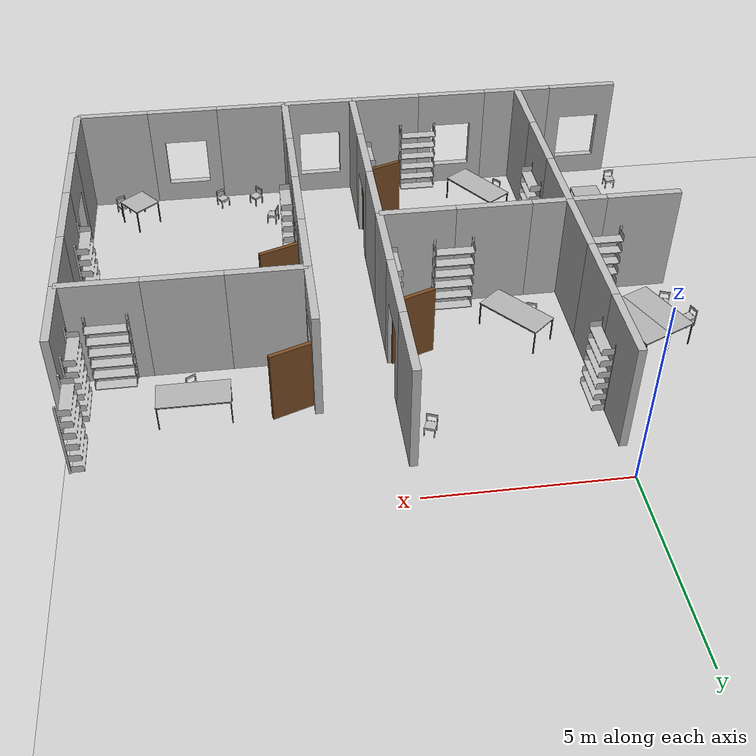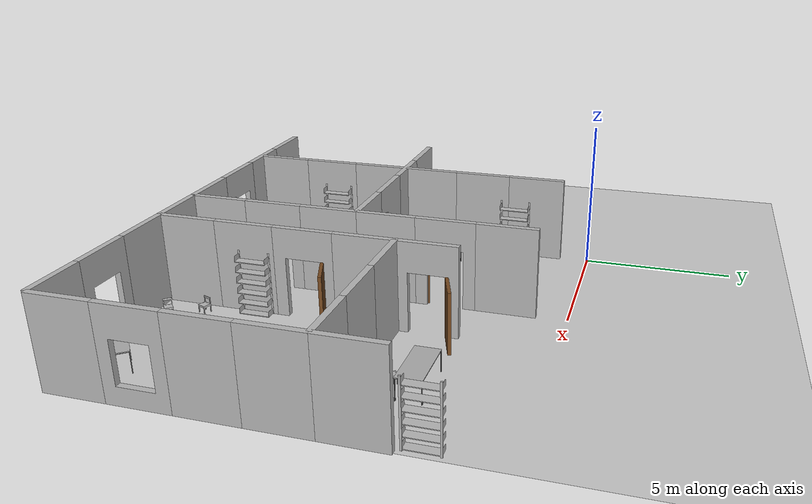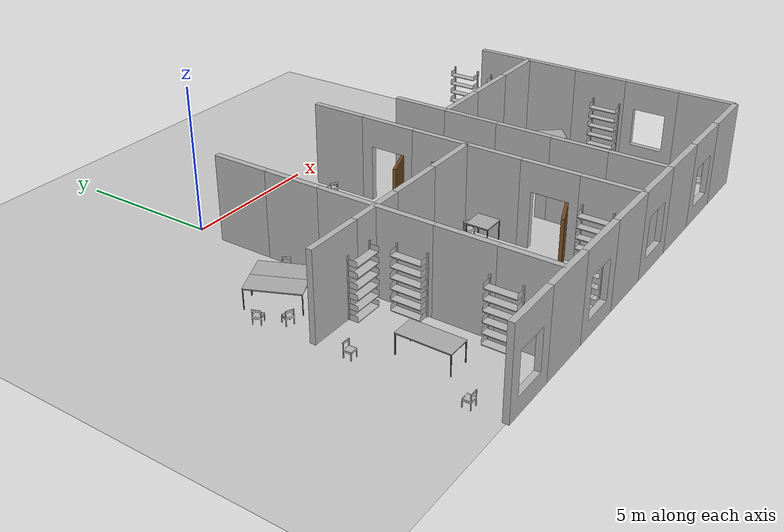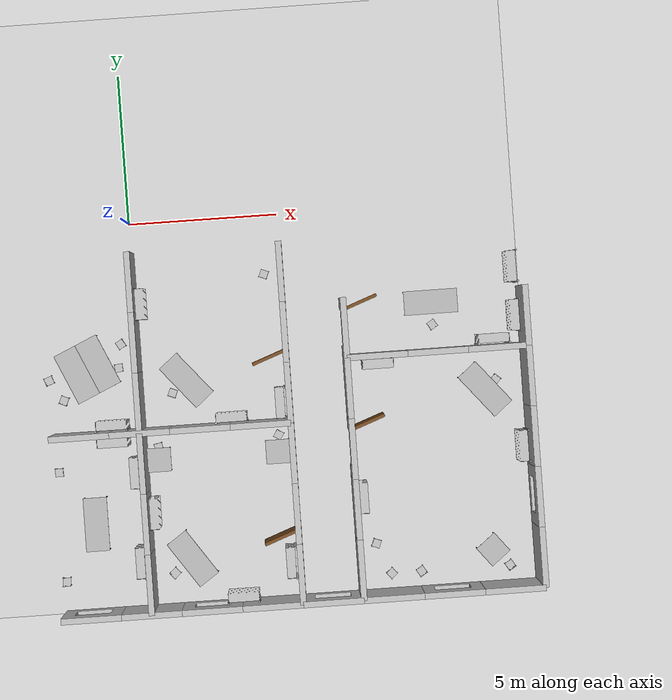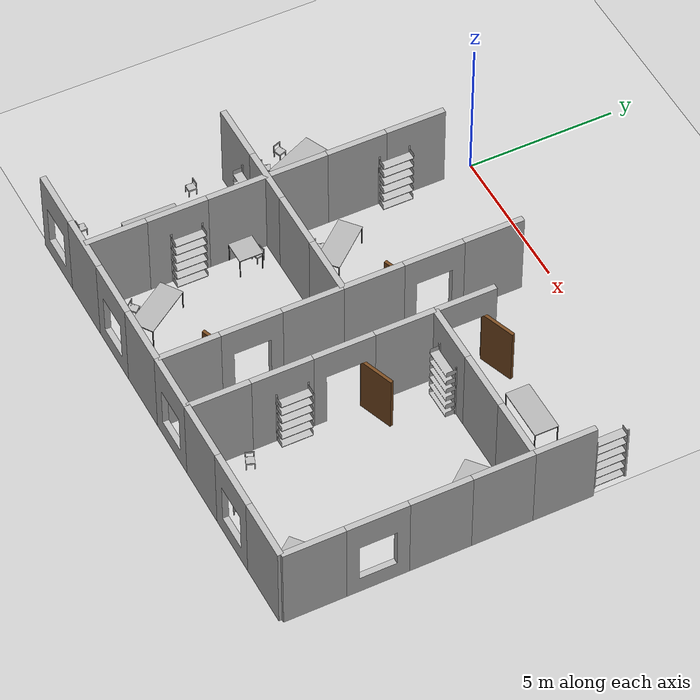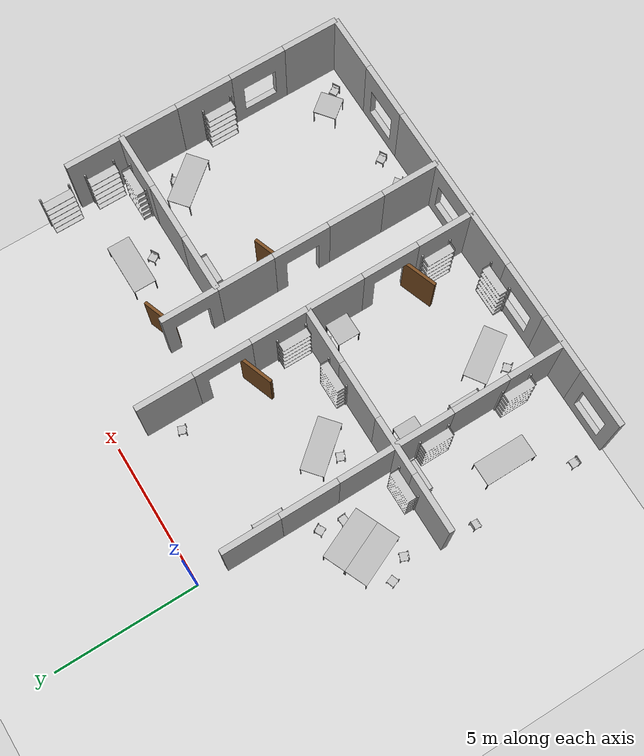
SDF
<sdf version="1.6">
 <world name="office_sim">
  <model name="office_floor">
   <pose>1 -3 0 0 -0 0</pose>
   <static>1</static>
   <link name="link">
    <collision name="collision">
     <geometry><plane><normal>0 0 1</normal><size>100 100</size></plane></geometry>
     <surface><friction><ode><mu>100</mu><mu2>50</mu2></ode></friction></surface>
    </collision>
    <visual name="visual">
     <cast_shadows>0</cast_shadows>
     <geometry><plane><normal>0 0 1</normal><size>24 20</size></plane></geometry>
     <material>
      <script><uri>file://Media/materials/scripts/iai-office.material</uri><name>IAI/OfficeCarpet</name></script>
     </material>
    </visual>
   </link>
  </model>
  <model name="Shelves.030">
   <static>1</static>
   <link name="Shelves">
    <collision name="collision">
     <geometry><mesh><uri>model://Shelves/Shelves.dae</uri></mesh></geometry>
    </collision>
    <visual name="vis">
     <cast_shadows>0</cast_shadows>
     <geometry><mesh><uri>model://Shelves/Shelves.dae</uri></mesh></geometry>
    </visual>
   </link>
   <pose>-0.968436 -7.13507 0 0 -0 0</pose>
  </model>
  <model name="Shelves.029">
   <static>1</static>
   <link name="Shelves">
    <collision name="collision">
     <geometry><mesh><uri>model://Shelves/Shelves.dae</uri></mesh></geometry>
    </collision>
    <visual name="vis">
     <cast_shadows>0</cast_shadows>
     <geometry><mesh><uri>model://Shelves/Shelves.dae</uri></mesh></geometry>
    </visual>
   </link>
   <pose>8.03156 -5.13507 0 0 -0 0</pose>
  </model>
  <model name="Shelves.024">
   <static>1</static>
   <link name="Shelves">
    <collision name="collision">
     <geometry><mesh><uri>model://Shelves/Shelves.dae</uri></mesh></geometry>
    </collision>
    <visual name="vis">
     <cast_shadows>0</cast_shadows>
     <geometry><mesh><uri>model://Shelves/Shelves.dae</uri></mesh></geometry>
    </visual>
   </link>
   <pose>-0.968436 -6.85579 0 0 -0 -3.14159</pose>
  </model>
  <model name="Shelves.023">
   <static>1</static>
   <link name="Shelves">
    <collision name="collision">
     <geometry><mesh><uri>model://Shelves/Shelves.dae</uri></mesh></geometry>
    </collision>
    <visual name="vis">
     <cast_shadows>0</cast_shadows>
     <geometry><mesh><uri>model://Shelves/Shelves.dae</uri></mesh></geometry>
    </visual>
   </link>
   <pose>11.9316 -4.8423 0 0 -0 -3.14159</pose>
  </model>
  <model name="Shelves.021">
   <static>1</static>
   <link name="Shelves">
    <collision name="collision">
     <geometry><mesh><uri>model://Shelves/Shelves.dae</uri></mesh></geometry>
    </collision>
    <visual name="vis">
     <cast_shadows>0</cast_shadows>
     <geometry><mesh><uri>model://Shelves/Shelves.dae</uri></mesh></geometry>
    </visual>
   </link>
   <pose>3.03156 -6.85579 0 0 -0 -3.14159</pose>
  </model>
  <model name="Shelves.020">
   <static>1</static>
   <link name="Shelves">
    <collision name="collision">
     <geometry><mesh><uri>model://Shelves/Shelves.dae</uri></mesh></geometry>
    </collision>
    <visual name="vis">
     <cast_shadows>0</cast_shadows>
     <geometry><mesh><uri>model://Shelves/Shelves.dae</uri></mesh></geometry>
    </visual>
   </link>
   <pose>3.03156 -12.8558 0 0 -0 -3.14159</pose>
  </model>
  <model name="Shelves.019">
   <static>1</static>
   <link name="Shelves">
    <collision name="collision">
     <geometry><mesh><uri>model://Shelves/Shelves.dae</uri></mesh></geometry>
    </collision>
    <visual name="vis">
     <cast_shadows>0</cast_shadows>
     <geometry><mesh><uri>model://Shelves/Shelves.dae</uri></mesh></geometry>
    </visual>
   </link>
   <pose>4.83156 -11.6774 0 0 -0 -1.5708</pose>
  </model>
  <model name="Shelves.018">
   <static>1</static>
   <link name="Shelves">
    <collision name="collision">
     <geometry><mesh><uri>model://Shelves/Shelves.dae</uri></mesh></geometry>
    </collision>
    <visual name="vis">
     <cast_shadows>0</cast_shadows>
     <geometry><mesh><uri>model://Shelves/Shelves.dae</uri></mesh></geometry>
    </visual>
   </link>
   <pose>-0.168436 -8.34184 0 0 -0 -1.5708</pose>
  </model>
  <model name="Shelves.017">
   <static>1</static>
   <link name="Shelves">
    <collision name="collision">
     <geometry><mesh><uri>model://Shelves/Shelves.dae</uri></mesh></geometry>
    </collision>
    <visual name="vis">
     <cast_shadows>0</cast_shadows>
     <geometry><mesh><uri>model://Shelves/Shelves.dae</uri></mesh></geometry>
    </visual>
   </link>
   <pose>-0.168436 -11.3418 0 0 -0 -1.5708</pose>
  </model>
  <model name="Shelves.014">
   <static>1</static>
   <link name="Shelves">
    <collision name="collision">
     <geometry><mesh><uri>model://Shelves/Shelves.dae</uri></mesh></geometry>
    </collision>
    <visual name="vis">
     <cast_shadows>0</cast_shadows>
     <geometry><mesh><uri>model://Shelves/Shelves.dae</uri></mesh></geometry>
    </visual>
   </link>
   <pose>4.83156 -6.34184 0 0 -0 -1.5708</pose>
  </model>
  <model name="Shelves.013">
   <static>1</static>
   <link name="Shelves">
    <collision name="collision">
     <geometry><mesh><uri>model://Shelves/Shelves.dae</uri></mesh></geometry>
    </collision>
    <visual name="vis">
     <cast_shadows>0</cast_shadows>
     <geometry><mesh><uri>model://Shelves/Shelves.dae</uri></mesh></geometry>
    </visual>
   </link>
   <pose>12.8316 -8.34184 0 0 -0 -1.5708</pose>
  </model>
  <model name="Shelves.012">
   <static>1</static>
   <link name="Shelves">
    <collision name="collision">
     <geometry><mesh><uri>model://Shelves/Shelves.dae</uri></mesh></geometry>
    </collision>
    <visual name="vis">
     <cast_shadows>0</cast_shadows>
     <geometry><mesh><uri>model://Shelves/Shelves.dae</uri></mesh></geometry>
    </visual>
   </link>
   <pose>12.8316 -2.34184 0 0 -0 -1.5708</pose>
  </model>
  <model name="Shelves.011">
   <static>1</static>
   <link name="Shelves">
    <collision name="collision">
     <geometry><mesh><uri>model://Shelves/Shelves.dae</uri></mesh></geometry>
    </collision>
    <visual name="vis">
     <cast_shadows>0</cast_shadows>
     <geometry><mesh><uri>model://Shelves/Shelves.dae</uri></mesh></geometry>
    </visual>
   </link>
   <pose>12.8316 -3.97036 0 0 -0 -1.5708</pose>
  </model>
  <model name="Shelves.009">
   <static>1</static>
   <link name="Shelves">
    <collision name="collision">
     <geometry><mesh><uri>model://Shelves/Shelves.dae</uri></mesh></geometry>
    </collision>
    <visual name="vis">
     <cast_shadows>0</cast_shadows>
     <geometry><mesh><uri>model://Shelves/Shelves.dae</uri></mesh></geometry>
    </visual>
   </link>
   <pose>7.10335 -9.7003 0 0 -0 1.5708</pose>
  </model>
  <model name="Shelves.007">
   <static>1</static>
   <link name="Shelves">
    <collision name="collision">
     <geometry><mesh><uri>model://Shelves/Shelves.dae</uri></mesh></geometry>
    </collision>
    <visual name="vis">
     <cast_shadows>0</cast_shadows>
     <geometry><mesh><uri>model://Shelves/Shelves.dae</uri></mesh></geometry>
    </visual>
   </link>
   <pose>0.103355 -9.74184 0 0 -0 1.5708</pose>
  </model>
  <model name="Shelves.006">
   <static>1</static>
   <link name="Shelves">
    <collision name="collision">
     <geometry><mesh><uri>model://Shelves/Shelves.dae</uri></mesh></geometry>
    </collision>
    <visual name="vis">
     <cast_shadows>0</cast_shadows>
     <geometry><mesh><uri>model://Shelves/Shelves.dae</uri></mesh></geometry>
    </visual>
   </link>
   <pose>0.103355 -2.74184 0 0 -0 1.5708</pose>
  </model>
  <model name="DoorOpen.005">
   <static>1</static>
   <link name="DoorOpen">
    <collision name="collision">
     <geometry><mesh><uri>model://DoorOpen/DoorOpen.dae</uri></mesh></geometry>
    </collision>
    <visual name="vis">
     <cast_shadows>0</cast_shadows>
     <geometry><mesh><uri>model://DoorOpen/DoorOpen.dae</uri></mesh></geometry>
    </visual>
   </link>
   <pose>5 -10 0 0 -0 1.5708</pose>
  </model>
  <model name="DoorOpen.004">
   <static>1</static>
   <link name="DoorOpen">
    <collision name="collision">
     <geometry><mesh><uri>model://DoorOpen/DoorOpen.dae</uri></mesh></geometry>
    </collision>
    <visual name="vis">
     <cast_shadows>0</cast_shadows>
     <geometry><mesh><uri>model://DoorOpen/DoorOpen.dae</uri></mesh></geometry>
    </visual>
   </link>
   <pose>5 -4 0 0 -0 1.5708</pose>
  </model>
  <model name="DoorOpen.003">
   <static>1</static>
   <link name="DoorOpen">
    <collision name="collision">
     <geometry><mesh><uri>model://DoorOpen/DoorOpen.dae</uri></mesh></geometry>
    </collision>
    <visual name="vis">
     <cast_shadows>0</cast_shadows>
     <geometry><mesh><uri>model://DoorOpen/DoorOpen.dae</uri></mesh></geometry>
    </visual>
   </link>
   <pose>7 -4 0 0 0 -1.5708</pose>
  </model>
  <model name="DoorOpen.002">
   <static>1</static>
   <link name="DoorOpen">
    <collision name="collision">
     <geometry><mesh><uri>model://DoorOpen/DoorOpen.dae</uri></mesh></geometry>
    </collision>
    <visual name="vis">
     <cast_shadows>0</cast_shadows>
     <geometry><mesh><uri>model://DoorOpen/DoorOpen.dae</uri></mesh></geometry>
    </visual>
   </link>
   <pose>7 -8 0 0 0 -1.5708</pose>
  </model>
  <model name="chair.051">
   <static>1</static>
   <link name="Chair">
    <collision name="collision"><geometry><mesh><uri>model://Chair/Chair.dae</uri></mesh></geometry></collision>
    <visual name="vis">
     <cast_shadows>0</cast_shadows>
     <geometry><mesh><uri>model://Chair/Chair.dae</uri></mesh></geometry>
    </visual>
   </link>
   <pose>-0.552092 -4.03075 0 0 0 -1.07227</pose>
  </model>
  <model name="chair.050">
   <static>1</static>
   <link name="Chair">
    <collision name="collision"><geometry><mesh><uri>model://Chair/Chair.dae</uri></mesh></geometry></collision>
    <visual name="vis">
     <cast_shadows>0</cast_shadows>
     <geometry><mesh><uri>model://Chair/Chair.dae</uri></mesh></geometry>
    </visual>
   </link>
   <pose>-0.672709 -4.8221 0 0 0 -1.48406</pose>
  </model>
  <model name="chair.049">
   <static>1</static>
   <link name="Chair">
    <collision name="collision"><geometry><mesh><uri>model://Chair/Chair.dae</uri></mesh></geometry></collision>
    <visual name="vis">
     <cast_shadows>0</cast_shadows>
     <geometry><mesh><uri>model://Chair/Chair.dae</uri></mesh></geometry>
    </visual>
   </link>
   <pose>-3.04582 -5.09608 0 0 -0 1.91933</pose>
  </model>
  <model name="chair.048">
   <static>1</static>
   <link name="Chair">
    <collision name="collision"><geometry><mesh><uri>model://Chair/Chair.dae</uri></mesh></geometry></collision>
    <visual name="vis">
     <cast_shadows>0</cast_shadows>
     <geometry><mesh><uri>model://Chair/Chair.dae</uri></mesh></geometry>
    </visual>
   </link>
   <pose>1.08533 -5.79404 0 0 -0 2.75264</pose>
  </model>
  <model name="chair.047">
   <static>1</static>
   <link name="Chair">
    <collision name="collision"><geometry><mesh><uri>model://Chair/Chair.dae</uri></mesh></geometry></collision>
    <visual name="vis">
     <cast_shadows>0</cast_shadows>
     <geometry><mesh><uri>model://Chair/Chair.dae</uri></mesh></geometry>
    </visual>
   </link>
   <pose>7.59996 -11.3455 0 0 -0 1.20669</pose>
  </model>
  <model name="chair.046">
   <static>1</static>
   <link name="Chair">
    <collision name="collision"><geometry><mesh><uri>model://Chair/Chair.dae</uri></mesh></geometry></collision>
    <visual name="vis">
     <cast_shadows>0</cast_shadows>
     <geometry><mesh><uri>model://Chair/Chair.dae</uri></mesh></geometry>
    </visual>
   </link>
   <pose>8.05269 -12.3867 0 0 -0 2.24947</pose>
  </model>
  <model name="chair.045">
   <static>1</static>
   <link name="Chair">
    <collision name="collision"><geometry><mesh><uri>model://Chair/Chair.dae</uri></mesh></geometry></collision>
    <visual name="vis">
     <cast_shadows>0</cast_shadows>
     <geometry><mesh><uri>model://Chair/Chair.dae</uri></mesh></geometry>
    </visual>
   </link>
   <pose>9.05269 -12.3867 0 0 0 -2.59411</pose>
  </model>
  <model name="chair.044">
   <static>1</static>
   <link name="Chair">
    <collision name="collision"><geometry><mesh><uri>model://Chair/Chair.dae</uri></mesh></geometry></collision>
    <visual name="vis">
     <cast_shadows>0</cast_shadows>
     <geometry><mesh><uri>model://Chair/Chair.dae</uri></mesh></geometry>
    </visual>
   </link>
   <pose>4.43473 -2.00327 0 0 -0 2.75264</pose>
  </model>
  <model name="chair.043">
   <static>1</static>
   <link name="Chair">
    <collision name="collision"><geometry><mesh><uri>model://Chair/Chair.dae</uri></mesh></geometry></collision>
    <visual name="vis">
     <cast_shadows>0</cast_shadows>
     <geometry><mesh><uri>model://Chair/Chair.dae</uri></mesh></geometry>
    </visual>
   </link>
   <pose>-2.59309 -5.79404 0 0 -0 2.75264</pose>
  </model>
  <model name="chair.042">
   <static>1</static>
   <link name="Chair">
    <collision name="collision"><geometry><mesh><uri>model://Chair/Chair.dae</uri></mesh></geometry></collision>
    <visual name="vis">
     <cast_shadows>0</cast_shadows>
     <geometry><mesh><uri>model://Chair/Chair.dae</uri></mesh></geometry>
    </visual>
   </link>
   <pose>4.56003 -7.452 0 0 0 -0.56349</pose>
  </model>
  <model name="chair.041">
   <static>1</static>
   <link name="Chair">
    <collision name="collision"><geometry><mesh><uri>model://Chair/Chair.dae</uri></mesh></geometry></collision>
    <visual name="vis">
     <cast_shadows>0</cast_shadows>
     <geometry><mesh><uri>model://Chair/Chair.dae</uri></mesh></geometry>
    </visual>
   </link>
   <pose>0.485468 -7.58782 0 0 -0 0.204308</pose>
  </model>
  <model name="chair.040">
   <static>1</static>
   <link name="Chair">
    <collision name="collision"><geometry><mesh><uri>model://Chair/Chair.dae</uri></mesh></geometry></collision>
    <visual name="vis">
     <cast_shadows>0</cast_shadows>
     <geometry><mesh><uri>model://Chair/Chair.dae</uri></mesh></geometry>
    </visual>
   </link>
   <pose>0.757105 -11.8661 0 0 -0 2.29281</pose>
  </model>
  <model name="chair.039">
   <static>1</static>
   <link name="Chair">
    <collision name="collision"><geometry><mesh><uri>model://Chair/Chair.dae</uri></mesh></geometry></collision>
    <visual name="vis">
     <cast_shadows>0</cast_shadows>
     <geometry><mesh><uri>model://Chair/Chair.dae</uri></mesh></geometry>
    </visual>
   </link>
   <pose>12.0527 -12.3867 0 0 0 -2.59411</pose>
  </model>
  <model name="chair.038">
   <static>1</static>
   <link name="Chair">
    <collision name="collision"><geometry><mesh><uri>model://Chair/Chair.dae</uri></mesh></geometry></collision>
    <visual name="vis">
     <cast_shadows>0</cast_shadows>
     <geometry><mesh><uri>model://Chair/Chair.dae</uri></mesh></geometry>
    </visual>
   </link>
   <pose>11.9928 -6.10181 0 0 0 -0.698132</pose>
  </model>
  <model name="chair.037">
   <static>1</static>
   <link name="Chair">
    <collision name="collision"><geometry><mesh><uri>model://Chair/Chair.dae</uri></mesh></geometry></collision>
    <visual name="vis">
     <cast_shadows>0</cast_shadows>
     <geometry><mesh><uri>model://Chair/Chair.dae</uri></mesh></geometry>
    </visual>
   </link>
   <pose>9.99277 -4.10181 0 0 0 -2.59411</pose>
  </model>
  <model name="chair.007">
   <static>1</static>
   <link name="Chair">
    <collision name="collision"><geometry><mesh><uri>model://Chair/Chair.dae</uri></mesh></geometry></collision>
    <visual name="vis">
     <cast_shadows>0</cast_shadows>
     <geometry><mesh><uri>model://Chair/Chair.dae</uri></mesh></geometry>
    </visual>
   </link>
   <pose>-2.92484 -11.9088 0 0 0 -3.14159</pose>
  </model>
  <model name="chair.001">
   <static>1</static>
   <link name="Chair">
    <collision name="collision"><geometry><mesh><uri>model://Chair/Chair.dae</uri></mesh></geometry></collision>
    <visual name="vis">
     <cast_shadows>0</cast_shadows>
     <geometry><mesh><uri>model://Chair/Chair.dae</uri></mesh></geometry>
    </visual>
   </link>
   <pose>-2.92484 -8.20884 0 0 -0 0</pose>
  </model>
  <model name="SmallTable.009">
   <static>1</static>
   <link name="SmallTable">
    <collision name="collision">
     <geometry><mesh><uri>model://SmallTable/SmallTable.dae</uri></mesh></geometry>
    </collision>
    <visual name="vis">
     <cast_shadows>0</cast_shadows>
     <geometry><mesh><uri>model://SmallTable/SmallTable.dae</uri></mesh></geometry>
    </visual>
   </link>
   <pose>11.4928 -11.7998 0 0 -0 0.671094</pose>
  </model>
  <model name="SmallTable.008">
   <static>1</static>
   <link name="SmallTable">
    <collision name="collision">
     <geometry><mesh><uri>model://SmallTable/SmallTable.dae</uri></mesh></geometry>
    </collision>
    <visual name="vis">
     <cast_shadows>0</cast_shadows>
     <geometry><mesh><uri>model://SmallTable/SmallTable.dae</uri></mesh></geometry>
    </visual>
   </link>
   <pose>0.492772 -7.9975 0 0 -0 0</pose>
  </model>
  <model name="SmallTable.007">
   <static>1</static>
   <link name="SmallTable">
    <collision name="collision">
     <geometry><mesh><uri>model://SmallTable/SmallTable.dae</uri></mesh></geometry>
    </collision>
    <visual name="vis">
     <cast_shadows>0</cast_shadows>
     <geometry><mesh><uri>model://SmallTable/SmallTable.dae</uri></mesh></geometry>
    </visual>
   </link>
   <pose>4.49277 -7.9975 0 0 -0 0</pose>
  </model>
  <model name="BigTable.035">
   <static>1</static>
   <link name="BigTable">
    <collision name="collision">
     <geometry><mesh><uri>model://BigTable/BigTable.dae</uri></mesh></geometry>
    </collision>
    <visual name="vis">
     <cast_shadows>0</cast_shadows>
     <geometry><mesh><uri>model://BigTable/BigTable.dae</uri></mesh></geometry>
    </visual>
   </link>
   <pose>9.97064 -3.33759 0 0 0 -3.14159</pose>
  </model>
  <model name="BigTable.034">
   <static>1</static>
   <link name="BigTable">
    <collision name="collision">
     <geometry><mesh><uri>model://BigTable/BigTable.dae</uri></mesh></geometry>
    </collision>
    <visual name="vis">
     <cast_shadows>0</cast_shadows>
     <geometry><mesh><uri>model://BigTable/BigTable.dae</uri></mesh></geometry>
    </visual>
   </link>
   <pose>-1.76531 -10.016 0 0 0 -1.5708</pose>
  </model>
  <model name="BigTable.033">
   <static>1</static>
   <link name="BigTable">
    <collision name="collision">
     <geometry><mesh><uri>model://BigTable/BigTable.dae</uri></mesh></geometry>
    </collision>
    <visual name="vis">
     <cast_shadows>0</cast_shadows>
     <geometry><mesh><uri>model://BigTable/BigTable.dae</uri></mesh></geometry>
    </visual>
   </link>
   <pose>1.39098 -11.3926 0 0 0 -0.969615</pose>
  </model>
  <model name="BigTable.032">
   <static>1</static>
   <link name="BigTable">
    <collision name="collision">
     <geometry><mesh><uri>model://BigTable/BigTable.dae</uri></mesh></geometry>
    </collision>
    <visual name="vis">
     <cast_shadows>0</cast_shadows>
     <geometry><mesh><uri>model://BigTable/BigTable.dae</uri></mesh></geometry>
    </visual>
   </link>
   <pose>11.592 -6.39257 0 0 -0 2.25924</pose>
  </model>
  <model name="BigTable.003">
   <static>1</static>
   <link name="BigTable">
    <collision name="collision">
     <geometry><mesh><uri>model://BigTable/BigTable.dae</uri></mesh></geometry>
    </collision>
    <visual name="vis">
     <cast_shadows>0</cast_shadows>
     <geometry><mesh><uri>model://BigTable/BigTable.dae</uri></mesh></geometry>
    </visual>
   </link>
   <pose>-2.07344 -4.95513 0 0 0 -1.15229</pose>
  </model>
  <model name="BigTable.002">
   <static>1</static>
   <link name="BigTable">
    <collision name="collision">
     <geometry><mesh><uri>model://BigTable/BigTable.dae</uri></mesh></geometry>
    </collision>
    <visual name="vis">
     <cast_shadows>0</cast_shadows>
     <geometry><mesh><uri>model://BigTable/BigTable.dae</uri></mesh></geometry>
    </visual>
   </link>
   <pose>-1.34248 -4.63001 0 0 0 -1.15229</pose>
  </model>
  <model name="BigTable.001">
   <static>1</static>
   <link name="BigTable">
    <collision name="collision">
     <geometry><mesh><uri>model://BigTable/BigTable.dae</uri></mesh></geometry>
    </collision>
    <visual name="vis">
     <cast_shadows>0</cast_shadows>
     <geometry><mesh><uri>model://BigTable/BigTable.dae</uri></mesh></geometry>
    </visual>
   </link>
   <pose>1.59204 -5.39257 0 0 0 -0.872665</pose>
  </model>
  <model name="WindowTile.018">
   <static>1</static>
   <link name="WindowTile">
    <collision name="collision">
     <geometry><mesh><uri>model://WindowTile/WindowTile.dae</uri></mesh></geometry>
    </collision>
    <visual name="vis">
     <cast_shadows>0</cast_shadows>
     <geometry><mesh><uri>model://WindowTile/WindowTile.dae</uri></mesh></geometry>
     <material>
      <script><uri>file://Media/materials/scripts/iai-office.material</uri><name>IAI/OfficeWall</name></script>
     </material>
    </visual>
   </link>
   <pose>-2 -13 0 0 -0 0</pose>
  </model>
  <model name="WindowTile.017">
   <static>1</static>
   <link name="WindowTile">
    <collision name="collision">
     <geometry><mesh><uri>model://WindowTile/WindowTile.dae</uri></mesh></geometry>
    </collision>
    <visual name="vis">
     <cast_shadows>0</cast_shadows>
     <geometry><mesh><uri>model://WindowTile/WindowTile.dae</uri></mesh></geometry>
     <material>
      <script><uri>file://Media/materials/scripts/iai-office.material</uri><name>IAI/OfficeWall</name></script>
     </material>
    </visual>
   </link>
   <pose>2 -13 0 0 -0 0</pose>
  </model>
  <model name="WindowTile.016">
   <static>1</static>
   <link name="WindowTile">
    <collision name="collision">
     <geometry><mesh><uri>model://WindowTile/WindowTile.dae</uri></mesh></geometry>
    </collision>
    <visual name="vis">
     <cast_shadows>0</cast_shadows>
     <geometry><mesh><uri>model://WindowTile/WindowTile.dae</uri></mesh></geometry>
     <material>
      <script><uri>file://Media/materials/scripts/iai-office.material</uri><name>IAI/OfficeWall</name></script>
     </material>
    </visual>
   </link>
   <pose>6 -13 0 0 -0 0</pose>
  </model>
  <model name="DoorTile.011">
   <static>1</static>
   <link name="DoorTile">
    <collision name="collision">
     <geometry><mesh><uri>model://DoorTile/DoorTile.dae</uri></mesh></geometry>
    </collision>
    <visual name="vis">
     <cast_shadows>0</cast_shadows>
     <geometry><mesh><uri>model://DoorTile/DoorTile.dae</uri></mesh></geometry>
     <material>
      <script><uri>file://Media/materials/scripts/iai-office.material</uri><name>IAI/OfficeWall</name></script>
     </material>
    </visual>
   </link>
   <pose>5 -4 0 0 0 -1.5708</pose>
  </model>
  <model name="DoorTile.010">
   <static>1</static>
   <link name="DoorTile">
    <collision name="collision">
     <geometry><mesh><uri>model://DoorTile/DoorTile.dae</uri></mesh></geometry>
    </collision>
    <visual name="vis">
     <cast_shadows>0</cast_shadows>
     <geometry><mesh><uri>model://DoorTile/DoorTile.dae</uri></mesh></geometry>
     <material>
      <script><uri>file://Media/materials/scripts/iai-office.material</uri><name>IAI/OfficeWall</name></script>
     </material>
    </visual>
   </link>
   <pose>5 -10 0 0 0 -1.5708</pose>
  </model>
  <model name="WallTile.082">
   <static>1</static>
   <link name="WallTile">
    <collision name="collision">
     <geometry><mesh><uri>model://WallTile/WallTile.dae</uri></mesh></geometry>
    </collision>
    <visual name="vis">
     <cast_shadows>0</cast_shadows>
     <geometry><mesh><uri>model://WallTile/WallTile.dae</uri></mesh></geometry>
     <material>
      <script><uri>file://Media/materials/scripts/iai-office.material</uri><name>IAI/OfficeWall</name></script>
     </material>
    </visual>
   </link>
   <pose>4 -7 0 0 -0 0</pose>
  </model>
  <model name="WallTile.081">
   <static>1</static>
   <link name="WallTile">
    <collision name="collision">
     <geometry><mesh><uri>model://WallTile/WallTile.dae</uri></mesh></geometry>
    </collision>
    <visual name="vis">
     <cast_shadows>0</cast_shadows>
     <geometry><mesh><uri>model://WallTile/WallTile.dae</uri></mesh></geometry>
     <material>
      <script><uri>file://Media/materials/scripts/iai-office.material</uri><name>IAI/OfficeWall</name></script>
     </material>
    </visual>
   </link>
   <pose>2 -7 0 0 -0 3.14159</pose>
  </model>
  <model name="WallTile.080">
   <static>1</static>
   <link name="WallTile">
    <collision name="collision">
     <geometry><mesh><uri>model://WallTile/WallTile.dae</uri></mesh></geometry>
    </collision>
    <visual name="vis">
     <cast_shadows>0</cast_shadows>
     <geometry><mesh><uri>model://WallTile/WallTile.dae</uri></mesh></geometry>
     <material>
      <script><uri>file://Media/materials/scripts/iai-office.material</uri><name>IAI/OfficeWall</name></script>
     </material>
    </visual>
   </link>
   <pose>5 -6 0 0 -0 1.5708</pose>
  </model>
  <model name="WallTile.078">
   <static>1</static>
   <link name="WallTile">
    <collision name="collision">
     <geometry><mesh><uri>model://WallTile/WallTile.dae</uri></mesh></geometry>
    </collision>
    <visual name="vis">
     <cast_shadows>0</cast_shadows>
     <geometry><mesh><uri>model://WallTile/WallTile.dae</uri></mesh></geometry>
     <material>
      <script><uri>file://Media/materials/scripts/iai-office.material</uri><name>IAI/OfficeWall</name></script>
     </material>
    </visual>
   </link>
   <pose>5 -2 0 0 -0 1.5708</pose>
  </model>
  <model name="WallTile.077">
   <static>1</static>
   <link name="WallTile">
    <collision name="collision">
     <geometry><mesh><uri>model://WallTile/WallTile.dae</uri></mesh></geometry>
    </collision>
    <visual name="vis">
     <cast_shadows>0</cast_shadows>
     <geometry><mesh><uri>model://WallTile/WallTile.dae</uri></mesh></geometry>
     <material>
      <script><uri>file://Media/materials/scripts/iai-office.material</uri><name>IAI/OfficeWall</name></script>
     </material>
    </visual>
   </link>
   <pose>5 -8 0 0 -0 1.5708</pose>
  </model>
  <model name="WallTile.075">
   <static>1</static>
   <link name="WallTile">
    <collision name="collision">
     <geometry><mesh><uri>model://WallTile/WallTile.dae</uri></mesh></geometry>
    </collision>
    <visual name="vis">
     <cast_shadows>0</cast_shadows>
     <geometry><mesh><uri>model://WallTile/WallTile.dae</uri></mesh></geometry>
     <material>
      <script><uri>file://Media/materials/scripts/iai-office.material</uri><name>IAI/OfficeWall</name></script>
     </material>
    </visual>
   </link>
   <pose>5 -12 0 0 -0 1.5708</pose>
  </model>
  <model name="WallTile.074">
   <static>1</static>
   <link name="WallTile">
    <collision name="collision">
     <geometry><mesh><uri>model://WallTile/WallTile.dae</uri></mesh></geometry>
    </collision>
    <visual name="vis">
     <cast_shadows>0</cast_shadows>
     <geometry><mesh><uri>model://WallTile/WallTile.dae</uri></mesh></geometry>
     <material>
      <script><uri>file://Media/materials/scripts/iai-office.material</uri><name>IAI/OfficeWall</name></script>
     </material>
    </visual>
   </link>
   <pose>0 -12 0 0 -0 1.5708</pose>
  </model>
  <model name="WallTile.073">
   <static>1</static>
   <link name="WallTile">
    <collision name="collision">
     <geometry><mesh><uri>model://WallTile/WallTile.dae</uri></mesh></geometry>
    </collision>
    <visual name="vis">
     <cast_shadows>0</cast_shadows>
     <geometry><mesh><uri>model://WallTile/WallTile.dae</uri></mesh></geometry>
     <material>
      <script><uri>file://Media/materials/scripts/iai-office.material</uri><name>IAI/OfficeWall</name></script>
     </material>
    </visual>
   </link>
   <pose>0 -10 0 0 -0 1.5708</pose>
  </model>
  <model name="WallTile.072">
   <static>1</static>
   <link name="WallTile">
    <collision name="collision">
     <geometry><mesh><uri>model://WallTile/WallTile.dae</uri></mesh></geometry>
    </collision>
    <visual name="vis">
     <cast_shadows>0</cast_shadows>
     <geometry><mesh><uri>model://WallTile/WallTile.dae</uri></mesh></geometry>
     <material>
      <script><uri>file://Media/materials/scripts/iai-office.material</uri><name>IAI/OfficeWall</name></script>
     </material>
    </visual>
   </link>
   <pose>0 -8 0 0 -0 1.5708</pose>
  </model>
  <model name="WallTile.071">
   <static>1</static>
   <link name="WallTile">
    <collision name="collision">
     <geometry><mesh><uri>model://WallTile/WallTile.dae</uri></mesh></geometry>
    </collision>
    <visual name="vis">
     <cast_shadows>0</cast_shadows>
     <geometry><mesh><uri>model://WallTile/WallTile.dae</uri></mesh></geometry>
     <material>
      <script><uri>file://Media/materials/scripts/iai-office.material</uri><name>IAI/OfficeWall</name></script>
     </material>
    </visual>
   </link>
   <pose>-2 -7 0 0 -0 3.14159</pose>
  </model>
  <model name="WallTile.068">
   <static>1</static>
   <link name="WallTile">
    <collision name="collision">
     <geometry><mesh><uri>model://WallTile/WallTile.dae</uri></mesh></geometry>
    </collision>
    <visual name="vis">
     <cast_shadows>0</cast_shadows>
     <geometry><mesh><uri>model://WallTile/WallTile.dae</uri></mesh></geometry>
     <material>
      <script><uri>file://Media/materials/scripts/iai-office.material</uri><name>IAI/OfficeWall</name></script>
     </material>
    </visual>
   </link>
   <pose>0 -7 0 0 -0 0</pose>
  </model>
  <model name="WallTile.067">
   <static>1</static>
   <link name="WallTile">
    <collision name="collision">
     <geometry><mesh><uri>model://WallTile/WallTile.dae</uri></mesh></geometry>
    </collision>
    <visual name="vis">
     <cast_shadows>0</cast_shadows>
     <geometry><mesh><uri>model://WallTile/WallTile.dae</uri></mesh></geometry>
     <material>
      <script><uri>file://Media/materials/scripts/iai-office.material</uri><name>IAI/OfficeWall</name></script>
     </material>
    </visual>
   </link>
   <pose>0 -2 0 0 -0 1.5708</pose>
  </model>
  <model name="WallTile.066">
   <static>1</static>
   <link name="WallTile">
    <collision name="collision">
     <geometry><mesh><uri>model://WallTile/WallTile.dae</uri></mesh></geometry>
    </collision>
    <visual name="vis">
     <cast_shadows>0</cast_shadows>
     <geometry><mesh><uri>model://WallTile/WallTile.dae</uri></mesh></geometry>
     <material>
      <script><uri>file://Media/materials/scripts/iai-office.material</uri><name>IAI/OfficeWall</name></script>
     </material>
    </visual>
   </link>
   <pose>0 -4 0 0 -0 1.5708</pose>
  </model>
  <model name="WallTile.065">
   <static>1</static>
   <link name="WallTile">
    <collision name="collision">
     <geometry><mesh><uri>model://WallTile/WallTile.dae</uri></mesh></geometry>
    </collision>
    <visual name="vis">
     <cast_shadows>0</cast_shadows>
     <geometry><mesh><uri>model://WallTile/WallTile.dae</uri></mesh></geometry>
     <material>
      <script><uri>file://Media/materials/scripts/iai-office.material</uri><name>IAI/OfficeWall</name></script>
     </material>
    </visual>
   </link>
   <pose>0 -6 0 0 -0 1.5708</pose>
  </model>
  <model name="DoorTile.004">
   <static>1</static>
   <link name="DoorTile">
    <collision name="collision">
     <geometry><mesh><uri>model://DoorTile/DoorTile.dae</uri></mesh></geometry>
    </collision>
    <visual name="vis">
     <cast_shadows>0</cast_shadows>
     <geometry><mesh><uri>model://DoorTile/DoorTile.dae</uri></mesh></geometry>
     <material>
      <script><uri>file://Media/materials/scripts/iai-office.material</uri><name>IAI/OfficeWall</name></script>
     </material>
    </visual>
   </link>
   <pose>7 -8 0 0 0 -1.5708</pose>
  </model>
  <model name="WindowTile.010">
   <static>1</static>
   <link name="WindowTile">
    <collision name="collision">
     <geometry><mesh><uri>model://WindowTile/WindowTile.dae</uri></mesh></geometry>
    </collision>
    <visual name="vis">
     <cast_shadows>0</cast_shadows>
     <geometry><mesh><uri>model://WindowTile/WindowTile.dae</uri></mesh></geometry>
     <material>
      <script><uri>file://Media/materials/scripts/iai-office.material</uri><name>IAI/OfficeWall</name></script>
     </material>
    </visual>
   </link>
   <pose>10 -13 0 0 -0 0</pose>
  </model>
  <model name="WindowTile.009">
   <static>1</static>
   <link name="WindowTile">
    <collision name="collision">
     <geometry><mesh><uri>model://WindowTile/WindowTile.dae</uri></mesh></geometry>
    </collision>
    <visual name="vis">
     <cast_shadows>0</cast_shadows>
     <geometry><mesh><uri>model://WindowTile/WindowTile.dae</uri></mesh></geometry>
     <material>
      <script><uri>file://Media/materials/scripts/iai-office.material</uri><name>IAI/OfficeWall</name></script>
     </material>
    </visual>
   </link>
   <pose>13 -10 0 0 0 -1.5708</pose>
  </model>
  <model name="WallTile.044">
   <static>1</static>
   <link name="WallTile">
    <collision name="collision">
     <geometry><mesh><uri>model://WallTile/WallTile.dae</uri></mesh></geometry>
    </collision>
    <visual name="vis">
     <cast_shadows>0</cast_shadows>
     <geometry><mesh><uri>model://WallTile/WallTile.dae</uri></mesh></geometry>
     <material>
      <script><uri>file://Media/materials/scripts/iai-office.material</uri><name>IAI/OfficeWall</name></script>
     </material>
    </visual>
   </link>
   <pose>0 -13 0 0 -0 3.14159</pose>
  </model>
  <model name="WallTile.039">
   <static>1</static>
   <link name="WallTile">
    <collision name="collision">
     <geometry><mesh><uri>model://WallTile/WallTile.dae</uri></mesh></geometry>
    </collision>
    <visual name="vis">
     <cast_shadows>0</cast_shadows>
     <geometry><mesh><uri>model://WallTile/WallTile.dae</uri></mesh></geometry>
     <material>
      <script><uri>file://Media/materials/scripts/iai-office.material</uri><name>IAI/OfficeWall</name></script>
     </material>
    </visual>
   </link>
   <pose>4 -13 0 0 -0 3.14159</pose>
  </model>
  <model name="WallTile.037">
   <static>1</static>
   <link name="WallTile">
    <collision name="collision">
     <geometry><mesh><uri>model://WallTile/WallTile.dae</uri></mesh></geometry>
    </collision>
    <visual name="vis">
     <cast_shadows>0</cast_shadows>
     <geometry><mesh><uri>model://WallTile/WallTile.dae</uri></mesh></geometry>
     <material>
      <script><uri>file://Media/materials/scripts/iai-office.material</uri><name>IAI/OfficeWall</name></script>
     </material>
    </visual>
   </link>
   <pose>7 -12 0 0 0 -1.5708</pose>
  </model>
  <model name="WallTile.035">
   <static>1</static>
   <link name="WallTile">
    <collision name="collision">
     <geometry><mesh><uri>model://WallTile/WallTile.dae</uri></mesh></geometry>
    </collision>
    <visual name="vis">
     <cast_shadows>0</cast_shadows>
     <geometry><mesh><uri>model://WallTile/WallTile.dae</uri></mesh></geometry>
     <material>
      <script><uri>file://Media/materials/scripts/iai-office.material</uri><name>IAI/OfficeWall</name></script>
     </material>
    </visual>
   </link>
   <pose>7 -6 0 0 0 -1.5708</pose>
  </model>
  <model name="WallTile.034">
   <static>1</static>
   <link name="WallTile">
    <collision name="collision">
     <geometry><mesh><uri>model://WallTile/WallTile.dae</uri></mesh></geometry>
    </collision>
    <visual name="vis">
     <cast_shadows>0</cast_shadows>
     <geometry><mesh><uri>model://WallTile/WallTile.dae</uri></mesh></geometry>
     <material>
      <script><uri>file://Media/materials/scripts/iai-office.material</uri><name>IAI/OfficeWall</name></script>
     </material>
    </visual>
   </link>
   <pose>7 -10 0 0 0 -1.5708</pose>
  </model>
  <model name="WallTile.033">
   <static>1</static>
   <link name="WallTile">
    <collision name="collision">
     <geometry><mesh><uri>model://WallTile/WallTile.dae</uri></mesh></geometry>
    </collision>
    <visual name="vis">
     <cast_shadows>0</cast_shadows>
     <geometry><mesh><uri>model://WallTile/WallTile.dae</uri></mesh></geometry>
     <material>
      <script><uri>file://Media/materials/scripts/iai-office.material</uri><name>IAI/OfficeWall</name></script>
     </material>
    </visual>
   </link>
   <pose>8 -13 0 0 -0 3.14159</pose>
  </model>
  <model name="WallTile.032">
   <static>1</static>
   <link name="WallTile">
    <collision name="collision">
     <geometry><mesh><uri>model://WallTile/WallTile.dae</uri></mesh></geometry>
    </collision>
    <visual name="vis">
     <cast_shadows>0</cast_shadows>
     <geometry><mesh><uri>model://WallTile/WallTile.dae</uri></mesh></geometry>
     <material>
      <script><uri>file://Media/materials/scripts/iai-office.material</uri><name>IAI/OfficeWall</name></script>
     </material>
    </visual>
   </link>
   <pose>12 -13 0 0 -0 3.14159</pose>
  </model>
  <model name="WallTile.030">
   <static>1</static>
   <link name="WallTile">
    <collision name="collision">
     <geometry><mesh><uri>model://WallTile/WallTile.dae</uri></mesh></geometry>
    </collision>
    <visual name="vis">
     <cast_shadows>0</cast_shadows>
     <geometry><mesh><uri>model://WallTile/WallTile.dae</uri></mesh></geometry>
     <material>
      <script><uri>file://Media/materials/scripts/iai-office.material</uri><name>IAI/OfficeWall</name></script>
     </material>
    </visual>
   </link>
   <pose>13 -12 0 0 -0 1.5708</pose>
  </model>
  <model name="WallTile.027">
   <static>1</static>
   <link name="WallTile">
    <collision name="collision">
     <geometry><mesh><uri>model://WallTile/WallTile.dae</uri></mesh></geometry>
    </collision>
    <visual name="vis">
     <cast_shadows>0</cast_shadows>
     <geometry><mesh><uri>model://WallTile/WallTile.dae</uri></mesh></geometry>
     <material>
      <script><uri>file://Media/materials/scripts/iai-office.material</uri><name>IAI/OfficeWall</name></script>
     </material>
    </visual>
   </link>
   <pose>13 -4 0 0 -0 1.5708</pose>
  </model>
  <model name="WallTile.026">
   <static>1</static>
   <link name="WallTile">
    <collision name="collision">
     <geometry><mesh><uri>model://WallTile/WallTile.dae</uri></mesh></geometry>
    </collision>
    <visual name="vis">
     <cast_shadows>0</cast_shadows>
     <geometry><mesh><uri>model://WallTile/WallTile.dae</uri></mesh></geometry>
     <material>
      <script><uri>file://Media/materials/scripts/iai-office.material</uri><name>IAI/OfficeWall</name></script>
     </material>
    </visual>
   </link>
   <pose>13 -8 0 0 -0 1.5708</pose>
  </model>
  <model name="WallTile.025">
   <static>1</static>
   <link name="WallTile">
    <collision name="collision">
     <geometry><mesh><uri>model://WallTile/WallTile.dae</uri></mesh></geometry>
    </collision>
    <visual name="vis">
     <cast_shadows>0</cast_shadows>
     <geometry><mesh><uri>model://WallTile/WallTile.dae</uri></mesh></geometry>
     <material>
      <script><uri>file://Media/materials/scripts/iai-office.material</uri><name>IAI/OfficeWall</name></script>
     </material>
    </visual>
   </link>
   <pose>13 -6 0 0 -0 1.5708</pose>
  </model>
  <model name="WallTile.024">
   <static>1</static>
   <link name="WallTile">
    <collision name="collision">
     <geometry><mesh><uri>model://WallTile/WallTile.dae</uri></mesh></geometry>
    </collision>
    <visual name="vis">
     <cast_shadows>0</cast_shadows>
     <geometry><mesh><uri>model://WallTile/WallTile.dae</uri></mesh></geometry>
     <material>
      <script><uri>file://Media/materials/scripts/iai-office.material</uri><name>IAI/OfficeWall</name></script>
     </material>
    </visual>
   </link>
   <pose>10 -5 0 0 -0 3.14159</pose>
  </model>
  <model name="WallTile.023">
   <static>1</static>
   <link name="WallTile">
    <collision name="collision">
     <geometry><mesh><uri>model://WallTile/WallTile.dae</uri></mesh></geometry>
    </collision>
    <visual name="vis">
     <cast_shadows>0</cast_shadows>
     <geometry><mesh><uri>model://WallTile/WallTile.dae</uri></mesh></geometry>
     <material>
      <script><uri>file://Media/materials/scripts/iai-office.material</uri><name>IAI/OfficeWall</name></script>
     </material>
    </visual>
   </link>
   <pose>12 -5 0 0 -0 3.14159</pose>
  </model>
  <model name="WallTile.022">
   <static>1</static>
   <link name="WallTile">
    <collision name="collision">
     <geometry><mesh><uri>model://WallTile/WallTile.dae</uri></mesh></geometry>
    </collision>
    <visual name="vis">
     <cast_shadows>0</cast_shadows>
     <geometry><mesh><uri>model://WallTile/WallTile.dae</uri></mesh></geometry>
     <material>
      <script><uri>file://Media/materials/scripts/iai-office.material</uri><name>IAI/OfficeWall</name></script>
     </material>
    </visual>
   </link>
   <pose>8 -5 0 0 -0 3.14159</pose>
  </model>
  <model name="DoorTile.003">
   <static>1</static>
   <link name="DoorTile">
    <collision name="collision">
     <geometry><mesh><uri>model://DoorTile/DoorTile.dae</uri></mesh></geometry>
    </collision>
    <visual name="vis">
     <cast_shadows>0</cast_shadows>
     <geometry><mesh><uri>model://DoorTile/DoorTile.dae</uri></mesh></geometry>
     <material>
      <script><uri>file://Media/materials/scripts/iai-office.material</uri><name>IAI/OfficeWall</name></script>
     </material>
    </visual>
   </link>
   <pose>7 -4 0 0 0 -1.5708</pose>
  </model>
 </world>
</sdf>
